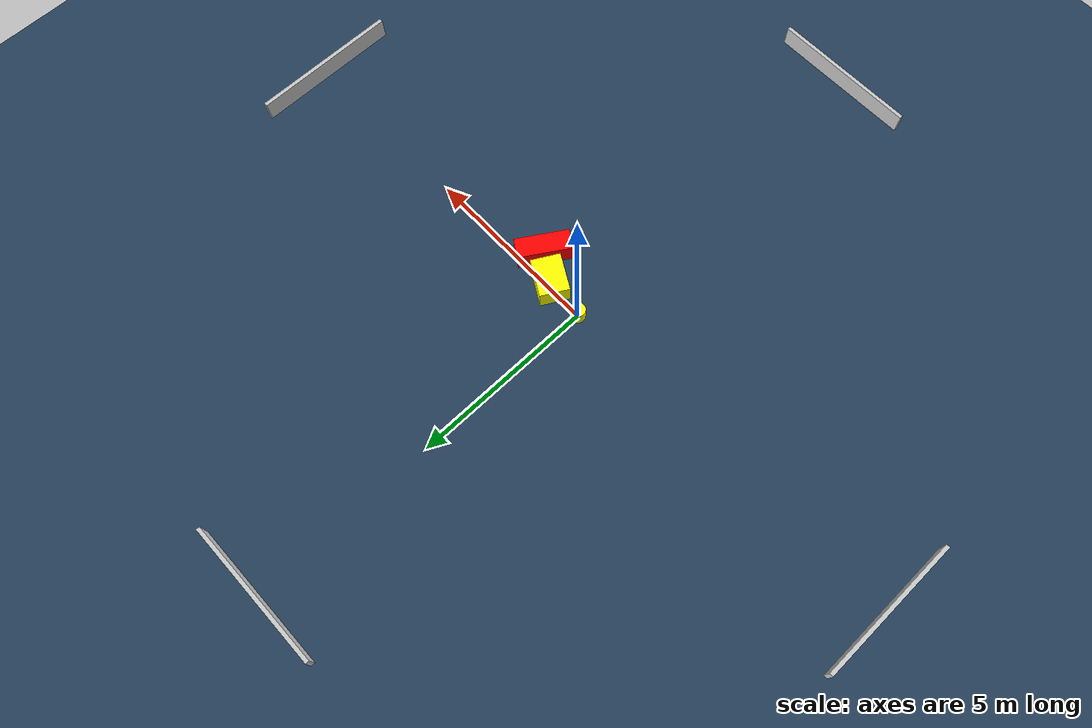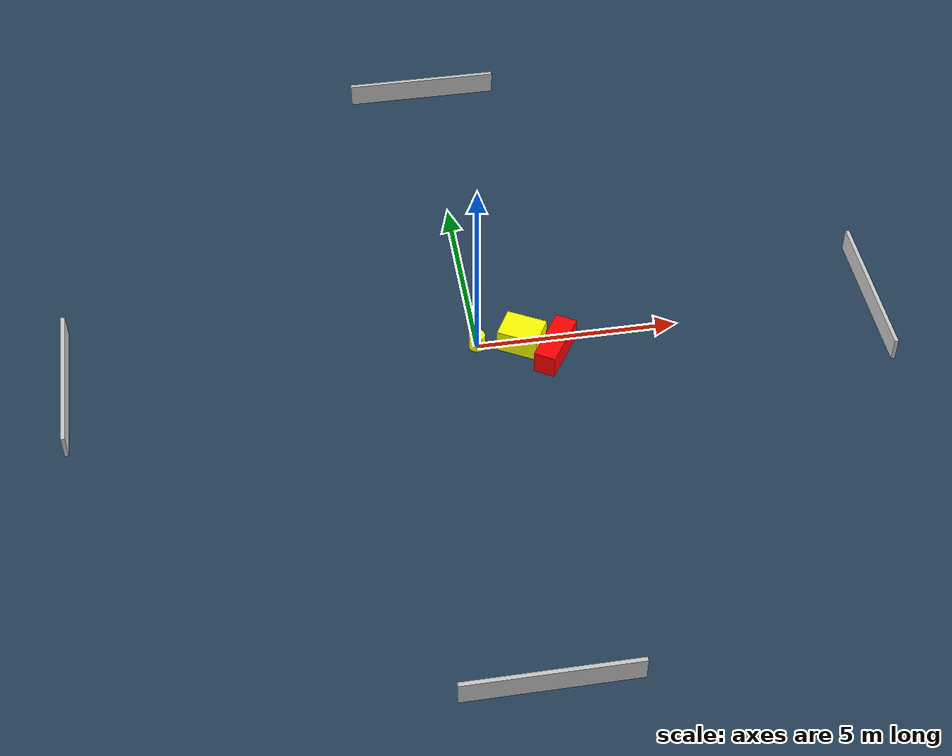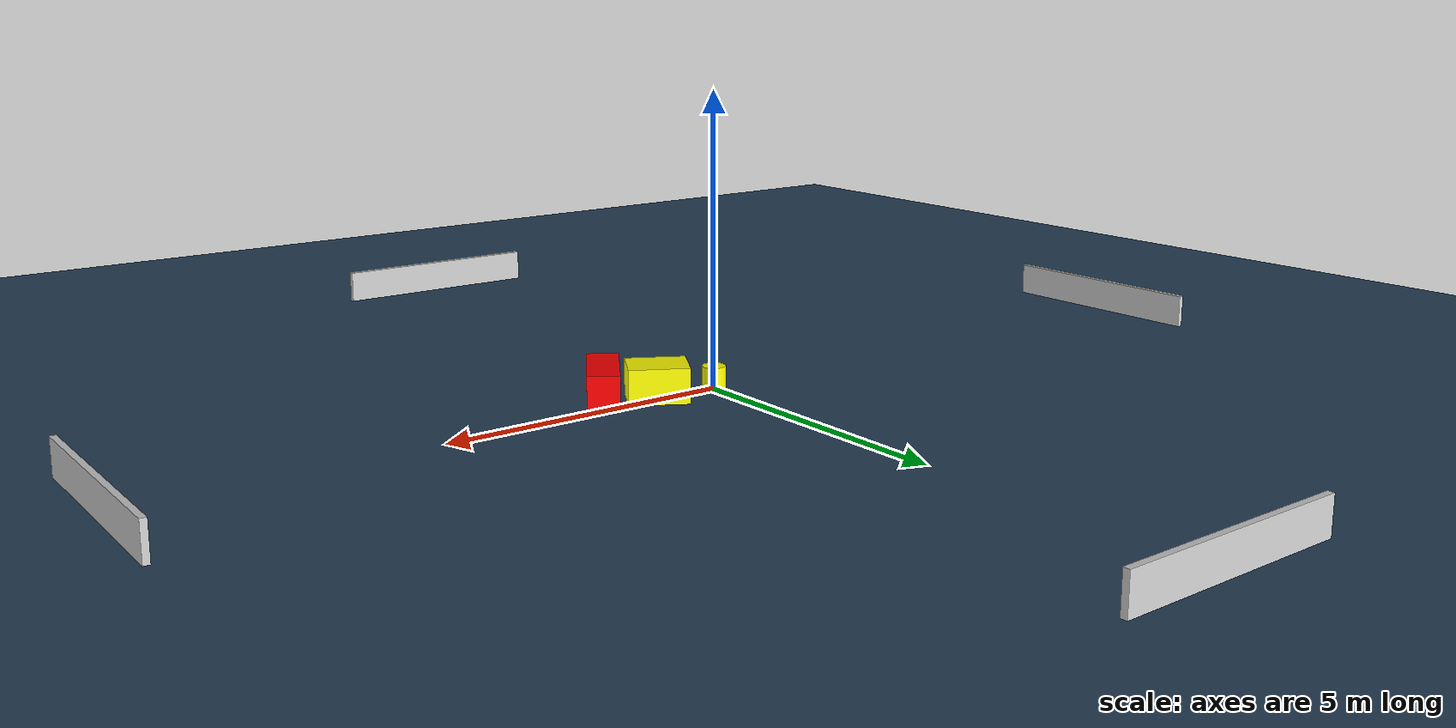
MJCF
<?xml version="1.0" ?>
<mujoco model="generated_environment">
  <option timestep="0.01" integrator="RK4" cone="elliptic"/>
  <default>
    <geom density="1"/>
  </default>
  <asset>
    <texture builtin="gradient" height="3072" name="skybox" rgb1="0.3 0.5 0.7" rgb2="0 0 0" type="skybox" width="512"/>
    <texture builtin="checker" height="300" name="groundplane" rgb1="0.2 0.3 0.4" rgb2="0.1 0.2 0.3" type="2d" width="300"/>
    <material name="groundplane" reflectance="0.2" texrepeat="5 5" texture="groundplane"/>
  </asset>
  <worldbody>
    <light dir="0 0 -1" directional="true" pos="0 0 1.5"/>
    <geom condim="3" friction="0.5 0.005 0.001" material="groundplane" name="floor" pos="0 0 0" size="0 0 0.05" type="plane"/>
    <body name="walls">
      <geom name="wall_1" condim="4" pos="-10.0 0.0 0.3" rgba="0.800000011920929 0.800000011920929 0.800000011920929 1.0" size="0.05 2.0 0.3" type="box"/>
      <geom name="wall_2" condim="4" pos="10.0 0.0 0.3" rgba="0.800000011920929 0.800000011920929 0.800000011920929 1.0" size="0.05 2.0 0.3" type="box"/>
      <geom name="wall_3" condim="4" pos="0.0 -10.0 0.3" rgba="0.800000011920929 0.800000011920929 0.800000011920929 1.0" size="2.0 0.05 0.3" type="box"/>
      <geom name="wall_4" condim="4" pos="0.0 10.0 0.3" rgba="0.800000011920929 0.800000011920929 0.800000011920929 1.0" size="2.0 0.05 0.3" type="box"/>
    </body>
    <body name="robot">
      <joint name="joint_x" type="slide" pos="0 0 0" axis="1 0 0"/>
      <joint name="joint_y" type="slide" pos="0 0 0" axis="0 1 0"/>
      <geom name="robot" type="cylinder" pos="0.0 0.0 0.2" size="0.2 0.2 0.0" mass="5.0" friction="1.0 0.005 0.0001" condim="4" rgba="1.0 1.0 0.0 1.0"/>
    </body>
    <body name="obstacle_1_movable">
      <geom name="obstacle_1_movable" condim="4" pos="1.0994461306680905 -0.09271069982775534 0.3" euler="0 0 240.609331983844" friction="0.0 0.005 0.001" rgba="1.0 1.0 0.0 1.0" size="0.3942498490011171 0.5084818472732135 0.3" type="box" mass="0.1"/>
      <joint type="free"/>
    </body>
    <body name="obstacle_2_static">
      <geom name="obstacle_2_static" condim="4" pos="1.8492509613613073 -0.5596122283572071 0.3" euler="0 0 327.42469370999544" friction="0.0 0.005 0.001" rgba="1.0 0.0 0.0 1.0" size="0.26868748204774096 0.7212606206218304 0.3" type="box"/>
    </body>
  </worldbody>
  <actuator>
    <motor name="actuator_x" joint="joint_x" gear="1" ctrlrange="-1 1"/>
    <motor name="actuator_y" joint="joint_y" gear="1" ctrlrange="-1 1"/>
  </actuator>
</mujoco>
